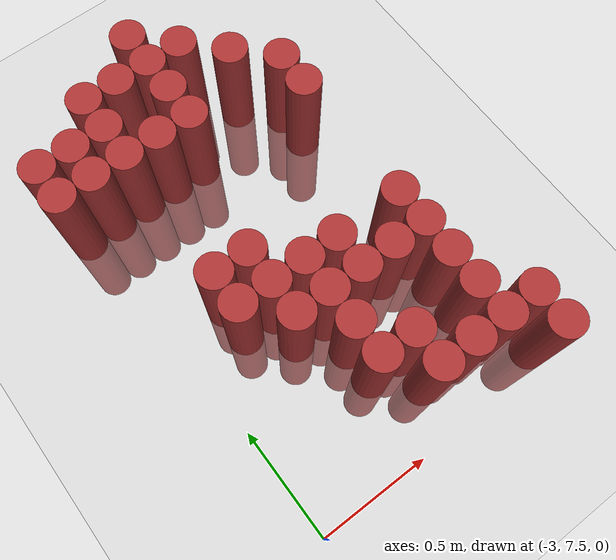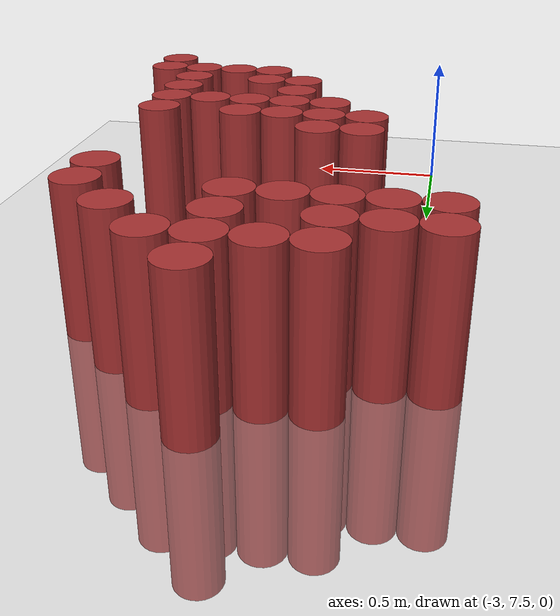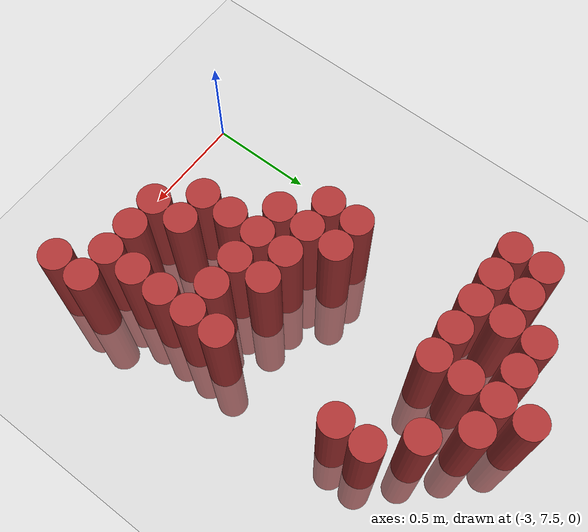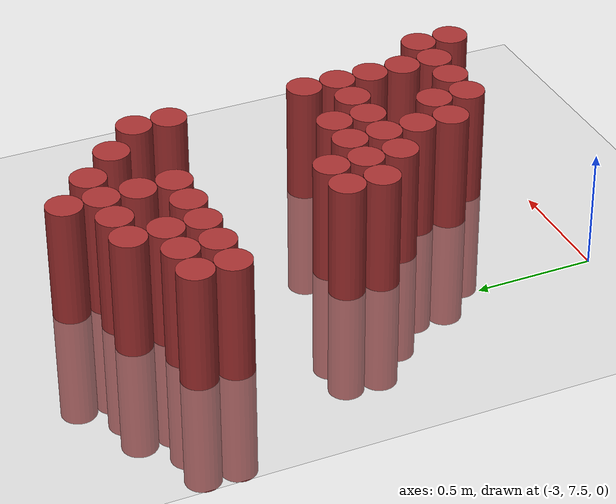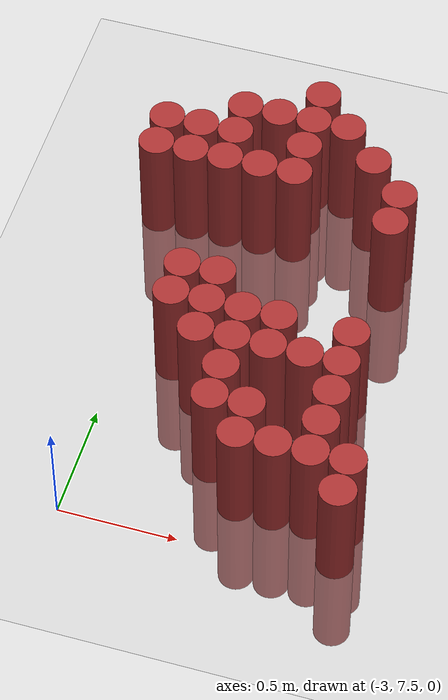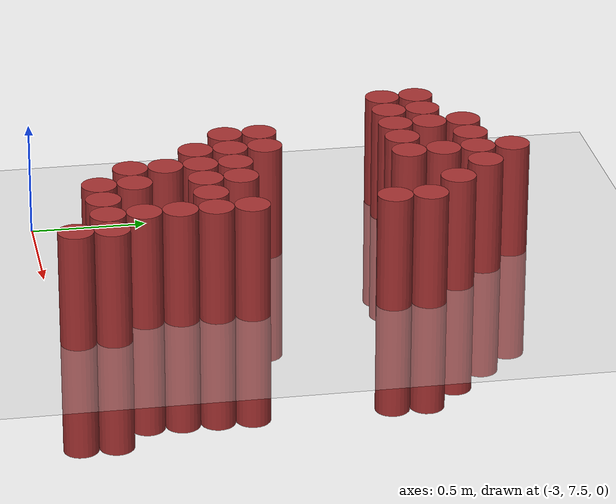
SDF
<sdf version="1.6">
 <world name="default">
  <model name="ground_plane">
   <static>1</static>
   <link name="link">
    <collision name="collision">
     <geometry><plane><normal>0 0 1</normal><size>100 100</size></plane></geometry>
     <surface><friction><ode><mu>100</mu><mu2>50</mu2></ode></friction></surface>
    </collision>
    <visual name="visual">
     <cast_shadows>0</cast_shadows>
     <geometry><plane><normal>0 0 1</normal><size>100 100</size></plane></geometry>
     <material>
      <script><uri>file://media/materials/scripts/gazebo.material</uri><name>Gazebo/Grey</name></script>
     </material>
    </visual>
   </link>
  </model>
  <model name="unit_cylinder_212">
   <static>1</static>
   <pose>-3.075000 9.075000 0.000000 0.000000 0.000000 0.000000</pose>
   <link name="link">
    <inertial>
     <mass>1</mass>
     <inertia><ixx>0.145833</ixx><ixy>0</ixy><ixz>0</ixz><iyy>0.145833</iyy><iyz>0</iyz><izz>0.125</izz></inertia>
    </inertial>
    <collision name="collision">
     <geometry><cylinder><radius>0.075000</radius><length>1</length></cylinder></geometry>
    </collision>
    <visual name="visual">
     <geometry><cylinder><radius>0.075000</radius><length>1</length></cylinder></geometry>
     <material>
      <ambient>0.648000 0.192000 0.192000 1</ambient>
      <diffuse>0.648000 0.192000 0.192000 1</diffuse>
     </material>
     <material>
      <script><name>Gazebo/Grey</name><uri>file://media/materials/scripts/gazebo.material</uri></script>
     </material>
    </visual>
    <sensor name="sensor_contact" type="contact"><contact><collision>collision</collision></contact></sensor>
   </link>
   <plugin filename="gz-sim-touchplugin-system" name="gz::sim::systems::TouchPlugin">
    <target>robot</target>
    <namespace>robot</namespace>
    <time>0.001</time>
    <enabled>true</enabled>
   </plugin>
  </model>
  <model name="unit_cylinder_213">
   <static>1</static>
   <pose>-3.075000 9.225000 0.000000 0.000000 0.000000 0.000000</pose>
   <link name="link">
    <inertial>
     <mass>1</mass>
     <inertia><ixx>0.145833</ixx><ixy>0</ixy><ixz>0</ixz><iyy>0.145833</iyy><iyz>0</iyz><izz>0.125</izz></inertia>
    </inertial>
    <collision name="collision">
     <geometry><cylinder><radius>0.075000</radius><length>1</length></cylinder></geometry>
    </collision>
    <visual name="visual">
     <geometry><cylinder><radius>0.075000</radius><length>1</length></cylinder></geometry>
     <material>
      <ambient>0.648000 0.192000 0.192000 1</ambient>
      <diffuse>0.648000 0.192000 0.192000 1</diffuse>
     </material>
     <material>
      <script><name>Gazebo/Grey</name><uri>file://media/materials/scripts/gazebo.material</uri></script>
     </material>
    </visual>
    <sensor name="sensor_contact" type="contact"><contact><collision>collision</collision></contact></sensor>
   </link>
   <plugin filename="gz-sim-touchplugin-system" name="gz::sim::systems::TouchPlugin">
    <target>robot</target>
    <namespace>robot</namespace>
    <time>0.001</time>
    <enabled>true</enabled>
   </plugin>
  </model>
  <model name="unit_cylinder_216">
   <static>1</static>
   <pose>-2.925000 9.075000 0.000000 0.000000 0.000000 0.000000</pose>
   <link name="link">
    <inertial>
     <mass>1</mass>
     <inertia><ixx>0.145833</ixx><ixy>0</ixy><ixz>0</ixz><iyy>0.145833</iyy><iyz>0</iyz><izz>0.125</izz></inertia>
    </inertial>
    <collision name="collision">
     <geometry><cylinder><radius>0.075000</radius><length>1</length></cylinder></geometry>
    </collision>
    <visual name="visual">
     <geometry><cylinder><radius>0.075000</radius><length>1</length></cylinder></geometry>
     <material>
      <ambient>0.648000 0.192000 0.192000 1</ambient>
      <diffuse>0.648000 0.192000 0.192000 1</diffuse>
     </material>
     <material>
      <script><name>Gazebo/Grey</name><uri>file://media/materials/scripts/gazebo.material</uri></script>
     </material>
    </visual>
    <sensor name="sensor_contact" type="contact"><contact><collision>collision</collision></contact></sensor>
   </link>
   <plugin filename="gz-sim-touchplugin-system" name="gz::sim::systems::TouchPlugin">
    <target>robot</target>
    <namespace>robot</namespace>
    <time>0.001</time>
    <enabled>true</enabled>
   </plugin>
  </model>
  <model name="unit_cylinder_217">
   <static>1</static>
   <pose>-2.925000 9.225000 0.000000 0.000000 0.000000 0.000000</pose>
   <link name="link">
    <inertial>
     <mass>1</mass>
     <inertia><ixx>0.145833</ixx><ixy>0</ixy><ixz>0</ixz><iyy>0.145833</iyy><iyz>0</iyz><izz>0.125</izz></inertia>
    </inertial>
    <collision name="collision">
     <geometry><cylinder><radius>0.075000</radius><length>1</length></cylinder></geometry>
    </collision>
    <visual name="visual">
     <geometry><cylinder><radius>0.075000</radius><length>1</length></cylinder></geometry>
     <material>
      <ambient>0.648000 0.192000 0.192000 1</ambient>
      <diffuse>0.648000 0.192000 0.192000 1</diffuse>
     </material>
     <material>
      <script><name>Gazebo/Grey</name><uri>file://media/materials/scripts/gazebo.material</uri></script>
     </material>
    </visual>
    <sensor name="sensor_contact" type="contact"><contact><collision>collision</collision></contact></sensor>
   </link>
   <plugin filename="gz-sim-touchplugin-system" name="gz::sim::systems::TouchPlugin">
    <target>robot</target>
    <namespace>robot</namespace>
    <time>0.001</time>
    <enabled>true</enabled>
   </plugin>
  </model>
  <model name="unit_cylinder_220">
   <static>1</static>
   <pose>-2.775000 8.325000 0.000000 0.000000 0.000000 0.000000</pose>
   <link name="link">
    <inertial>
     <mass>1</mass>
     <inertia><ixx>0.145833</ixx><ixy>0</ixy><ixz>0</ixz><iyy>0.145833</iyy><iyz>0</iyz><izz>0.125</izz></inertia>
    </inertial>
    <collision name="collision">
     <geometry><cylinder><radius>0.075000</radius><length>1</length></cylinder></geometry>
    </collision>
    <visual name="visual">
     <geometry><cylinder><radius>0.075000</radius><length>1</length></cylinder></geometry>
     <material>
      <ambient>0.648000 0.192000 0.192000 1</ambient>
      <diffuse>0.648000 0.192000 0.192000 1</diffuse>
     </material>
     <material>
      <script><name>Gazebo/Grey</name><uri>file://media/materials/scripts/gazebo.material</uri></script>
     </material>
    </visual>
    <sensor name="sensor_contact" type="contact"><contact><collision>collision</collision></contact></sensor>
   </link>
   <plugin filename="gz-sim-touchplugin-system" name="gz::sim::systems::TouchPlugin">
    <target>robot</target>
    <namespace>robot</namespace>
    <time>0.001</time>
    <enabled>true</enabled>
   </plugin>
  </model>
  <model name="unit_cylinder_221">
   <static>1</static>
   <pose>-2.775000 8.475000 0.000000 0.000000 0.000000 0.000000</pose>
   <link name="link">
    <inertial>
     <mass>1</mass>
     <inertia><ixx>0.145833</ixx><ixy>0</ixy><ixz>0</ixz><iyy>0.145833</iyy><iyz>0</iyz><izz>0.125</izz></inertia>
    </inertial>
    <collision name="collision">
     <geometry><cylinder><radius>0.075000</radius><length>1</length></cylinder></geometry>
    </collision>
    <visual name="visual">
     <geometry><cylinder><radius>0.075000</radius><length>1</length></cylinder></geometry>
     <material>
      <ambient>0.648000 0.192000 0.192000 1</ambient>
      <diffuse>0.648000 0.192000 0.192000 1</diffuse>
     </material>
     <material>
      <script><name>Gazebo/Grey</name><uri>file://media/materials/scripts/gazebo.material</uri></script>
     </material>
    </visual>
    <sensor name="sensor_contact" type="contact"><contact><collision>collision</collision></contact></sensor>
   </link>
   <plugin filename="gz-sim-touchplugin-system" name="gz::sim::systems::TouchPlugin">
    <target>robot</target>
    <namespace>robot</namespace>
    <time>0.001</time>
    <enabled>true</enabled>
   </plugin>
  </model>
  <model name="unit_cylinder_222">
   <static>1</static>
   <pose>-2.775000 9.075000 0.000000 0.000000 0.000000 0.000000</pose>
   <link name="link">
    <inertial>
     <mass>1</mass>
     <inertia><ixx>0.145833</ixx><ixy>0</ixy><ixz>0</ixz><iyy>0.145833</iyy><iyz>0</iyz><izz>0.125</izz></inertia>
    </inertial>
    <collision name="collision">
     <geometry><cylinder><radius>0.075000</radius><length>1</length></cylinder></geometry>
    </collision>
    <visual name="visual">
     <geometry><cylinder><radius>0.075000</radius><length>1</length></cylinder></geometry>
     <material>
      <ambient>0.648000 0.192000 0.192000 1</ambient>
      <diffuse>0.648000 0.192000 0.192000 1</diffuse>
     </material>
     <material>
      <script><name>Gazebo/Grey</name><uri>file://media/materials/scripts/gazebo.material</uri></script>
     </material>
    </visual>
    <sensor name="sensor_contact" type="contact"><contact><collision>collision</collision></contact></sensor>
   </link>
   <plugin filename="gz-sim-touchplugin-system" name="gz::sim::systems::TouchPlugin">
    <target>robot</target>
    <namespace>robot</namespace>
    <time>0.001</time>
    <enabled>true</enabled>
   </plugin>
  </model>
  <model name="unit_cylinder_223">
   <static>1</static>
   <pose>-2.775000 9.225000 0.000000 0.000000 0.000000 0.000000</pose>
   <link name="link">
    <inertial>
     <mass>1</mass>
     <inertia><ixx>0.145833</ixx><ixy>0</ixy><ixz>0</ixz><iyy>0.145833</iyy><iyz>0</iyz><izz>0.125</izz></inertia>
    </inertial>
    <collision name="collision">
     <geometry><cylinder><radius>0.075000</radius><length>1</length></cylinder></geometry>
    </collision>
    <visual name="visual">
     <geometry><cylinder><radius>0.075000</radius><length>1</length></cylinder></geometry>
     <material>
      <ambient>0.648000 0.192000 0.192000 1</ambient>
      <diffuse>0.648000 0.192000 0.192000 1</diffuse>
     </material>
     <material>
      <script><name>Gazebo/Grey</name><uri>file://media/materials/scripts/gazebo.material</uri></script>
     </material>
    </visual>
    <sensor name="sensor_contact" type="contact"><contact><collision>collision</collision></contact></sensor>
   </link>
   <plugin filename="gz-sim-touchplugin-system" name="gz::sim::systems::TouchPlugin">
    <target>robot</target>
    <namespace>robot</namespace>
    <time>0.001</time>
    <enabled>true</enabled>
   </plugin>
  </model>
  <model name="unit_cylinder_224">
   <static>1</static>
   <pose>-2.775000 9.375000 0.000000 0.000000 0.000000 0.000000</pose>
   <link name="link">
    <inertial>
     <mass>1</mass>
     <inertia><ixx>0.145833</ixx><ixy>0</ixy><ixz>0</ixz><iyy>0.145833</iyy><iyz>0</iyz><izz>0.125</izz></inertia>
    </inertial>
    <collision name="collision">
     <geometry><cylinder><radius>0.075000</radius><length>1</length></cylinder></geometry>
    </collision>
    <visual name="visual">
     <geometry><cylinder><radius>0.075000</radius><length>1</length></cylinder></geometry>
     <material>
      <ambient>0.648000 0.192000 0.192000 1</ambient>
      <diffuse>0.648000 0.192000 0.192000 1</diffuse>
     </material>
     <material>
      <script><name>Gazebo/Grey</name><uri>file://media/materials/scripts/gazebo.material</uri></script>
     </material>
    </visual>
    <sensor name="sensor_contact" type="contact"><contact><collision>collision</collision></contact></sensor>
   </link>
   <plugin filename="gz-sim-touchplugin-system" name="gz::sim::systems::TouchPlugin">
    <target>robot</target>
    <namespace>robot</namespace>
    <time>0.001</time>
    <enabled>true</enabled>
   </plugin>
  </model>
  <model name="unit_cylinder_230">
   <static>1</static>
   <pose>-2.625000 8.175000 0.000000 0.000000 0.000000 0.000000</pose>
   <link name="link">
    <inertial>
     <mass>1</mass>
     <inertia><ixx>0.145833</ixx><ixy>0</ixy><ixz>0</ixz><iyy>0.145833</iyy><iyz>0</iyz><izz>0.125</izz></inertia>
    </inertial>
    <collision name="collision">
     <geometry><cylinder><radius>0.075000</radius><length>1</length></cylinder></geometry>
    </collision>
    <visual name="visual">
     <geometry><cylinder><radius>0.075000</radius><length>1</length></cylinder></geometry>
     <material>
      <ambient>0.648000 0.192000 0.192000 1</ambient>
      <diffuse>0.648000 0.192000 0.192000 1</diffuse>
     </material>
     <material>
      <script><name>Gazebo/Grey</name><uri>file://media/materials/scripts/gazebo.material</uri></script>
     </material>
    </visual>
    <sensor name="sensor_contact" type="contact"><contact><collision>collision</collision></contact></sensor>
   </link>
   <plugin filename="gz-sim-touchplugin-system" name="gz::sim::systems::TouchPlugin">
    <target>robot</target>
    <namespace>robot</namespace>
    <time>0.001</time>
    <enabled>true</enabled>
   </plugin>
  </model>
  <model name="unit_cylinder_231">
   <static>1</static>
   <pose>-2.625000 8.325000 0.000000 0.000000 0.000000 0.000000</pose>
   <link name="link">
    <inertial>
     <mass>1</mass>
     <inertia><ixx>0.145833</ixx><ixy>0</ixy><ixz>0</ixz><iyy>0.145833</iyy><iyz>0</iyz><izz>0.125</izz></inertia>
    </inertial>
    <collision name="collision">
     <geometry><cylinder><radius>0.075000</radius><length>1</length></cylinder></geometry>
    </collision>
    <visual name="visual">
     <geometry><cylinder><radius>0.075000</radius><length>1</length></cylinder></geometry>
     <material>
      <ambient>0.648000 0.192000 0.192000 1</ambient>
      <diffuse>0.648000 0.192000 0.192000 1</diffuse>
     </material>
     <material>
      <script><name>Gazebo/Grey</name><uri>file://media/materials/scripts/gazebo.material</uri></script>
     </material>
    </visual>
    <sensor name="sensor_contact" type="contact"><contact><collision>collision</collision></contact></sensor>
   </link>
   <plugin filename="gz-sim-touchplugin-system" name="gz::sim::systems::TouchPlugin">
    <target>robot</target>
    <namespace>robot</namespace>
    <time>0.001</time>
    <enabled>true</enabled>
   </plugin>
  </model>
  <model name="unit_cylinder_232">
   <static>1</static>
   <pose>-2.625000 8.475000 0.000000 0.000000 0.000000 0.000000</pose>
   <link name="link">
    <inertial>
     <mass>1</mass>
     <inertia><ixx>0.145833</ixx><ixy>0</ixy><ixz>0</ixz><iyy>0.145833</iyy><iyz>0</iyz><izz>0.125</izz></inertia>
    </inertial>
    <collision name="collision">
     <geometry><cylinder><radius>0.075000</radius><length>1</length></cylinder></geometry>
    </collision>
    <visual name="visual">
     <geometry><cylinder><radius>0.075000</radius><length>1</length></cylinder></geometry>
     <material>
      <ambient>0.648000 0.192000 0.192000 1</ambient>
      <diffuse>0.648000 0.192000 0.192000 1</diffuse>
     </material>
     <material>
      <script><name>Gazebo/Grey</name><uri>file://media/materials/scripts/gazebo.material</uri></script>
     </material>
    </visual>
    <sensor name="sensor_contact" type="contact"><contact><collision>collision</collision></contact></sensor>
   </link>
   <plugin filename="gz-sim-touchplugin-system" name="gz::sim::systems::TouchPlugin">
    <target>robot</target>
    <namespace>robot</namespace>
    <time>0.001</time>
    <enabled>true</enabled>
   </plugin>
  </model>
  <model name="unit_cylinder_233">
   <static>1</static>
   <pose>-2.625000 9.075000 0.000000 0.000000 0.000000 0.000000</pose>
   <link name="link">
    <inertial>
     <mass>1</mass>
     <inertia><ixx>0.145833</ixx><ixy>0</ixy><ixz>0</ixz><iyy>0.145833</iyy><iyz>0</iyz><izz>0.125</izz></inertia>
    </inertial>
    <collision name="collision">
     <geometry><cylinder><radius>0.075000</radius><length>1</length></cylinder></geometry>
    </collision>
    <visual name="visual">
     <geometry><cylinder><radius>0.075000</radius><length>1</length></cylinder></geometry>
     <material>
      <ambient>0.648000 0.192000 0.192000 1</ambient>
      <diffuse>0.648000 0.192000 0.192000 1</diffuse>
     </material>
     <material>
      <script><name>Gazebo/Grey</name><uri>file://media/materials/scripts/gazebo.material</uri></script>
     </material>
    </visual>
    <sensor name="sensor_contact" type="contact"><contact><collision>collision</collision></contact></sensor>
   </link>
   <plugin filename="gz-sim-touchplugin-system" name="gz::sim::systems::TouchPlugin">
    <target>robot</target>
    <namespace>robot</namespace>
    <time>0.001</time>
    <enabled>true</enabled>
   </plugin>
  </model>
  <model name="unit_cylinder_234">
   <static>1</static>
   <pose>-2.625000 9.375000 0.000000 0.000000 0.000000 0.000000</pose>
   <link name="link">
    <inertial>
     <mass>1</mass>
     <inertia><ixx>0.145833</ixx><ixy>0</ixy><ixz>0</ixz><iyy>0.145833</iyy><iyz>0</iyz><izz>0.125</izz></inertia>
    </inertial>
    <collision name="collision">
     <geometry><cylinder><radius>0.075000</radius><length>1</length></cylinder></geometry>
    </collision>
    <visual name="visual">
     <geometry><cylinder><radius>0.075000</radius><length>1</length></cylinder></geometry>
     <material>
      <ambient>0.648000 0.192000 0.192000 1</ambient>
      <diffuse>0.648000 0.192000 0.192000 1</diffuse>
     </material>
     <material>
      <script><name>Gazebo/Grey</name><uri>file://media/materials/scripts/gazebo.material</uri></script>
     </material>
    </visual>
    <sensor name="sensor_contact" type="contact"><contact><collision>collision</collision></contact></sensor>
   </link>
   <plugin filename="gz-sim-touchplugin-system" name="gz::sim::systems::TouchPlugin">
    <target>robot</target>
    <namespace>robot</namespace>
    <time>0.001</time>
    <enabled>true</enabled>
   </plugin>
  </model>
  <model name="unit_cylinder_239">
   <static>1</static>
   <pose>-2.475000 7.875000 0.000000 0.000000 0.000000 0.000000</pose>
   <link name="link">
    <inertial>
     <mass>1</mass>
     <inertia><ixx>0.145833</ixx><ixy>0</ixy><ixz>0</ixz><iyy>0.145833</iyy><iyz>0</iyz><izz>0.125</izz></inertia>
    </inertial>
    <collision name="collision">
     <geometry><cylinder><radius>0.075000</radius><length>1</length></cylinder></geometry>
    </collision>
    <visual name="visual">
     <geometry><cylinder><radius>0.075000</radius><length>1</length></cylinder></geometry>
     <material>
      <ambient>0.648000 0.192000 0.192000 1</ambient>
      <diffuse>0.648000 0.192000 0.192000 1</diffuse>
     </material>
     <material>
      <script><name>Gazebo/Grey</name><uri>file://media/materials/scripts/gazebo.material</uri></script>
     </material>
    </visual>
    <sensor name="sensor_contact" type="contact"><contact><collision>collision</collision></contact></sensor>
   </link>
   <plugin filename="gz-sim-touchplugin-system" name="gz::sim::systems::TouchPlugin">
    <target>robot</target>
    <namespace>robot</namespace>
    <time>0.001</time>
    <enabled>true</enabled>
   </plugin>
  </model>
  <model name="unit_cylinder_240">
   <static>1</static>
   <pose>-2.475000 8.025000 0.000000 0.000000 0.000000 0.000000</pose>
   <link name="link">
    <inertial>
     <mass>1</mass>
     <inertia><ixx>0.145833</ixx><ixy>0</ixy><ixz>0</ixz><iyy>0.145833</iyy><iyz>0</iyz><izz>0.125</izz></inertia>
    </inertial>
    <collision name="collision">
     <geometry><cylinder><radius>0.075000</radius><length>1</length></cylinder></geometry>
    </collision>
    <visual name="visual">
     <geometry><cylinder><radius>0.075000</radius><length>1</length></cylinder></geometry>
     <material>
      <ambient>0.648000 0.192000 0.192000 1</ambient>
      <diffuse>0.648000 0.192000 0.192000 1</diffuse>
     </material>
     <material>
      <script><name>Gazebo/Grey</name><uri>file://media/materials/scripts/gazebo.material</uri></script>
     </material>
    </visual>
    <sensor name="sensor_contact" type="contact"><contact><collision>collision</collision></contact></sensor>
   </link>
   <plugin filename="gz-sim-touchplugin-system" name="gz::sim::systems::TouchPlugin">
    <target>robot</target>
    <namespace>robot</namespace>
    <time>0.001</time>
    <enabled>true</enabled>
   </plugin>
  </model>
  <model name="unit_cylinder_241">
   <static>1</static>
   <pose>-2.475000 8.175000 0.000000 0.000000 0.000000 0.000000</pose>
   <link name="link">
    <inertial>
     <mass>1</mass>
     <inertia><ixx>0.145833</ixx><ixy>0</ixy><ixz>0</ixz><iyy>0.145833</iyy><iyz>0</iyz><izz>0.125</izz></inertia>
    </inertial>
    <collision name="collision">
     <geometry><cylinder><radius>0.075000</radius><length>1</length></cylinder></geometry>
    </collision>
    <visual name="visual">
     <geometry><cylinder><radius>0.075000</radius><length>1</length></cylinder></geometry>
     <material>
      <ambient>0.648000 0.192000 0.192000 1</ambient>
      <diffuse>0.648000 0.192000 0.192000 1</diffuse>
     </material>
     <material>
      <script><name>Gazebo/Grey</name><uri>file://media/materials/scripts/gazebo.material</uri></script>
     </material>
    </visual>
    <sensor name="sensor_contact" type="contact"><contact><collision>collision</collision></contact></sensor>
   </link>
   <plugin filename="gz-sim-touchplugin-system" name="gz::sim::systems::TouchPlugin">
    <target>robot</target>
    <namespace>robot</namespace>
    <time>0.001</time>
    <enabled>true</enabled>
   </plugin>
  </model>
  <model name="unit_cylinder_242">
   <static>1</static>
   <pose>-2.475000 8.325000 0.000000 0.000000 0.000000 0.000000</pose>
   <link name="link">
    <inertial>
     <mass>1</mass>
     <inertia><ixx>0.145833</ixx><ixy>0</ixy><ixz>0</ixz><iyy>0.145833</iyy><iyz>0</iyz><izz>0.125</izz></inertia>
    </inertial>
    <collision name="collision">
     <geometry><cylinder><radius>0.075000</radius><length>1</length></cylinder></geometry>
    </collision>
    <visual name="visual">
     <geometry><cylinder><radius>0.075000</radius><length>1</length></cylinder></geometry>
     <material>
      <ambient>0.648000 0.192000 0.192000 1</ambient>
      <diffuse>0.648000 0.192000 0.192000 1</diffuse>
     </material>
     <material>
      <script><name>Gazebo/Grey</name><uri>file://media/materials/scripts/gazebo.material</uri></script>
     </material>
    </visual>
    <sensor name="sensor_contact" type="contact"><contact><collision>collision</collision></contact></sensor>
   </link>
   <plugin filename="gz-sim-touchplugin-system" name="gz::sim::systems::TouchPlugin">
    <target>robot</target>
    <namespace>robot</namespace>
    <time>0.001</time>
    <enabled>true</enabled>
   </plugin>
  </model>
  <model name="unit_cylinder_243">
   <static>1</static>
   <pose>-2.475000 9.075000 0.000000 0.000000 0.000000 0.000000</pose>
   <link name="link">
    <inertial>
     <mass>1</mass>
     <inertia><ixx>0.145833</ixx><ixy>0</ixy><ixz>0</ixz><iyy>0.145833</iyy><iyz>0</iyz><izz>0.125</izz></inertia>
    </inertial>
    <collision name="collision">
     <geometry><cylinder><radius>0.075000</radius><length>1</length></cylinder></geometry>
    </collision>
    <visual name="visual">
     <geometry><cylinder><radius>0.075000</radius><length>1</length></cylinder></geometry>
     <material>
      <ambient>0.648000 0.192000 0.192000 1</ambient>
      <diffuse>0.648000 0.192000 0.192000 1</diffuse>
     </material>
     <material>
      <script><name>Gazebo/Grey</name><uri>file://media/materials/scripts/gazebo.material</uri></script>
     </material>
    </visual>
    <sensor name="sensor_contact" type="contact"><contact><collision>collision</collision></contact></sensor>
   </link>
   <plugin filename="gz-sim-touchplugin-system" name="gz::sim::systems::TouchPlugin">
    <target>robot</target>
    <namespace>robot</namespace>
    <time>0.001</time>
    <enabled>true</enabled>
   </plugin>
  </model>
  <model name="unit_cylinder_244">
   <static>1</static>
   <pose>-2.475000 9.225000 0.000000 0.000000 0.000000 0.000000</pose>
   <link name="link">
    <inertial>
     <mass>1</mass>
     <inertia><ixx>0.145833</ixx><ixy>0</ixy><ixz>0</ixz><iyy>0.145833</iyy><iyz>0</iyz><izz>0.125</izz></inertia>
    </inertial>
    <collision name="collision">
     <geometry><cylinder><radius>0.075000</radius><length>1</length></cylinder></geometry>
    </collision>
    <visual name="visual">
     <geometry><cylinder><radius>0.075000</radius><length>1</length></cylinder></geometry>
     <material>
      <ambient>0.648000 0.192000 0.192000 1</ambient>
      <diffuse>0.648000 0.192000 0.192000 1</diffuse>
     </material>
     <material>
      <script><name>Gazebo/Grey</name><uri>file://media/materials/scripts/gazebo.material</uri></script>
     </material>
    </visual>
    <sensor name="sensor_contact" type="contact"><contact><collision>collision</collision></contact></sensor>
   </link>
   <plugin filename="gz-sim-touchplugin-system" name="gz::sim::systems::TouchPlugin">
    <target>robot</target>
    <namespace>robot</namespace>
    <time>0.001</time>
    <enabled>true</enabled>
   </plugin>
  </model>
  <model name="unit_cylinder_245">
   <static>1</static>
   <pose>-2.475000 9.375000 0.000000 0.000000 0.000000 0.000000</pose>
   <link name="link">
    <inertial>
     <mass>1</mass>
     <inertia><ixx>0.145833</ixx><ixy>0</ixy><ixz>0</ixz><iyy>0.145833</iyy><iyz>0</iyz><izz>0.125</izz></inertia>
    </inertial>
    <collision name="collision">
     <geometry><cylinder><radius>0.075000</radius><length>1</length></cylinder></geometry>
    </collision>
    <visual name="visual">
     <geometry><cylinder><radius>0.075000</radius><length>1</length></cylinder></geometry>
     <material>
      <ambient>0.648000 0.192000 0.192000 1</ambient>
      <diffuse>0.648000 0.192000 0.192000 1</diffuse>
     </material>
     <material>
      <script><name>Gazebo/Grey</name><uri>file://media/materials/scripts/gazebo.material</uri></script>
     </material>
    </visual>
    <sensor name="sensor_contact" type="contact"><contact><collision>collision</collision></contact></sensor>
   </link>
   <plugin filename="gz-sim-touchplugin-system" name="gz::sim::systems::TouchPlugin">
    <target>robot</target>
    <namespace>robot</namespace>
    <time>0.001</time>
    <enabled>true</enabled>
   </plugin>
  </model>
  <model name="unit_cylinder_246">
   <static>1</static>
   <pose>-2.475000 9.525000 0.000000 0.000000 0.000000 0.000000</pose>
   <link name="link">
    <inertial>
     <mass>1</mass>
     <inertia><ixx>0.145833</ixx><ixy>0</ixy><ixz>0</ixz><iyy>0.145833</iyy><iyz>0</iyz><izz>0.125</izz></inertia>
    </inertial>
    <collision name="collision">
     <geometry><cylinder><radius>0.075000</radius><length>1</length></cylinder></geometry>
    </collision>
    <visual name="visual">
     <geometry><cylinder><radius>0.075000</radius><length>1</length></cylinder></geometry>
     <material>
      <ambient>0.648000 0.192000 0.192000 1</ambient>
      <diffuse>0.648000 0.192000 0.192000 1</diffuse>
     </material>
     <material>
      <script><name>Gazebo/Grey</name><uri>file://media/materials/scripts/gazebo.material</uri></script>
     </material>
    </visual>
    <sensor name="sensor_contact" type="contact"><contact><collision>collision</collision></contact></sensor>
   </link>
   <plugin filename="gz-sim-touchplugin-system" name="gz::sim::systems::TouchPlugin">
    <target>robot</target>
    <namespace>robot</namespace>
    <time>0.001</time>
    <enabled>true</enabled>
   </plugin>
  </model>
  <model name="unit_cylinder_251">
   <static>1</static>
   <pose>-2.325000 7.725000 0.000000 0.000000 0.000000 0.000000</pose>
   <link name="link">
    <inertial>
     <mass>1</mass>
     <inertia><ixx>0.145833</ixx><ixy>0</ixy><ixz>0</ixz><iyy>0.145833</iyy><iyz>0</iyz><izz>0.125</izz></inertia>
    </inertial>
    <collision name="collision">
     <geometry><cylinder><radius>0.075000</radius><length>1</length></cylinder></geometry>
    </collision>
    <visual name="visual">
     <geometry><cylinder><radius>0.075000</radius><length>1</length></cylinder></geometry>
     <material>
      <ambient>0.648000 0.192000 0.192000 1</ambient>
      <diffuse>0.648000 0.192000 0.192000 1</diffuse>
     </material>
     <material>
      <script><name>Gazebo/Grey</name><uri>file://media/materials/scripts/gazebo.material</uri></script>
     </material>
    </visual>
    <sensor name="sensor_contact" type="contact"><contact><collision>collision</collision></contact></sensor>
   </link>
   <plugin filename="gz-sim-touchplugin-system" name="gz::sim::systems::TouchPlugin">
    <target>robot</target>
    <namespace>robot</namespace>
    <time>0.001</time>
    <enabled>true</enabled>
   </plugin>
  </model>
  <model name="unit_cylinder_252">
   <static>1</static>
   <pose>-2.325000 7.875000 0.000000 0.000000 0.000000 0.000000</pose>
   <link name="link">
    <inertial>
     <mass>1</mass>
     <inertia><ixx>0.145833</ixx><ixy>0</ixy><ixz>0</ixz><iyy>0.145833</iyy><iyz>0</iyz><izz>0.125</izz></inertia>
    </inertial>
    <collision name="collision">
     <geometry><cylinder><radius>0.075000</radius><length>1</length></cylinder></geometry>
    </collision>
    <visual name="visual">
     <geometry><cylinder><radius>0.075000</radius><length>1</length></cylinder></geometry>
     <material>
      <ambient>0.648000 0.192000 0.192000 1</ambient>
      <diffuse>0.648000 0.192000 0.192000 1</diffuse>
     </material>
     <material>
      <script><name>Gazebo/Grey</name><uri>file://media/materials/scripts/gazebo.material</uri></script>
     </material>
    </visual>
    <sensor name="sensor_contact" type="contact"><contact><collision>collision</collision></contact></sensor>
   </link>
   <plugin filename="gz-sim-touchplugin-system" name="gz::sim::systems::TouchPlugin">
    <target>robot</target>
    <namespace>robot</namespace>
    <time>0.001</time>
    <enabled>true</enabled>
   </plugin>
  </model>
  <model name="unit_cylinder_253">
   <static>1</static>
   <pose>-2.325000 8.175000 0.000000 0.000000 0.000000 0.000000</pose>
   <link name="link">
    <inertial>
     <mass>1</mass>
     <inertia><ixx>0.145833</ixx><ixy>0</ixy><ixz>0</ixz><iyy>0.145833</iyy><iyz>0</iyz><izz>0.125</izz></inertia>
    </inertial>
    <collision name="collision">
     <geometry><cylinder><radius>0.075000</radius><length>1</length></cylinder></geometry>
    </collision>
    <visual name="visual">
     <geometry><cylinder><radius>0.075000</radius><length>1</length></cylinder></geometry>
     <material>
      <ambient>0.648000 0.192000 0.192000 1</ambient>
      <diffuse>0.648000 0.192000 0.192000 1</diffuse>
     </material>
     <material>
      <script><name>Gazebo/Grey</name><uri>file://media/materials/scripts/gazebo.material</uri></script>
     </material>
    </visual>
    <sensor name="sensor_contact" type="contact"><contact><collision>collision</collision></contact></sensor>
   </link>
   <plugin filename="gz-sim-touchplugin-system" name="gz::sim::systems::TouchPlugin">
    <target>robot</target>
    <namespace>robot</namespace>
    <time>0.001</time>
    <enabled>true</enabled>
   </plugin>
  </model>
  <model name="unit_cylinder_254">
   <static>1</static>
   <pose>-2.325000 8.325000 0.000000 0.000000 0.000000 0.000000</pose>
   <link name="link">
    <inertial>
     <mass>1</mass>
     <inertia><ixx>0.145833</ixx><ixy>0</ixy><ixz>0</ixz><iyy>0.145833</iyy><iyz>0</iyz><izz>0.125</izz></inertia>
    </inertial>
    <collision name="collision">
     <geometry><cylinder><radius>0.075000</radius><length>1</length></cylinder></geometry>
    </collision>
    <visual name="visual">
     <geometry><cylinder><radius>0.075000</radius><length>1</length></cylinder></geometry>
     <material>
      <ambient>0.648000 0.192000 0.192000 1</ambient>
      <diffuse>0.648000 0.192000 0.192000 1</diffuse>
     </material>
     <material>
      <script><name>Gazebo/Grey</name><uri>file://media/materials/scripts/gazebo.material</uri></script>
     </material>
    </visual>
    <sensor name="sensor_contact" type="contact"><contact><collision>collision</collision></contact></sensor>
   </link>
   <plugin filename="gz-sim-touchplugin-system" name="gz::sim::systems::TouchPlugin">
    <target>robot</target>
    <namespace>robot</namespace>
    <time>0.001</time>
    <enabled>true</enabled>
   </plugin>
  </model>
  <model name="unit_cylinder_255">
   <static>1</static>
   <pose>-2.325000 9.375000 0.000000 0.000000 0.000000 0.000000</pose>
   <link name="link">
    <inertial>
     <mass>1</mass>
     <inertia><ixx>0.145833</ixx><ixy>0</ixy><ixz>0</ixz><iyy>0.145833</iyy><iyz>0</iyz><izz>0.125</izz></inertia>
    </inertial>
    <collision name="collision">
     <geometry><cylinder><radius>0.075000</radius><length>1</length></cylinder></geometry>
    </collision>
    <visual name="visual">
     <geometry><cylinder><radius>0.075000</radius><length>1</length></cylinder></geometry>
     <material>
      <ambient>0.648000 0.192000 0.192000 1</ambient>
      <diffuse>0.648000 0.192000 0.192000 1</diffuse>
     </material>
     <material>
      <script><name>Gazebo/Grey</name><uri>file://media/materials/scripts/gazebo.material</uri></script>
     </material>
    </visual>
    <sensor name="sensor_contact" type="contact"><contact><collision>collision</collision></contact></sensor>
   </link>
   <plugin filename="gz-sim-touchplugin-system" name="gz::sim::systems::TouchPlugin">
    <target>robot</target>
    <namespace>robot</namespace>
    <time>0.001</time>
    <enabled>true</enabled>
   </plugin>
  </model>
  <model name="unit_cylinder_262">
   <static>1</static>
   <pose>-2.175000 7.725000 0.000000 0.000000 0.000000 0.000000</pose>
   <link name="link">
    <inertial>
     <mass>1</mass>
     <inertia><ixx>0.145833</ixx><ixy>0</ixy><ixz>0</ixz><iyy>0.145833</iyy><iyz>0</iyz><izz>0.125</izz></inertia>
    </inertial>
    <collision name="collision">
     <geometry><cylinder><radius>0.075000</radius><length>1</length></cylinder></geometry>
    </collision>
    <visual name="visual">
     <geometry><cylinder><radius>0.075000</radius><length>1</length></cylinder></geometry>
     <material>
      <ambient>0.648000 0.192000 0.192000 1</ambient>
      <diffuse>0.648000 0.192000 0.192000 1</diffuse>
     </material>
     <material>
      <script><name>Gazebo/Grey</name><uri>file://media/materials/scripts/gazebo.material</uri></script>
     </material>
    </visual>
    <sensor name="sensor_contact" type="contact"><contact><collision>collision</collision></contact></sensor>
   </link>
   <plugin filename="gz-sim-touchplugin-system" name="gz::sim::systems::TouchPlugin">
    <target>robot</target>
    <namespace>robot</namespace>
    <time>0.001</time>
    <enabled>true</enabled>
   </plugin>
  </model>
  <model name="unit_cylinder_263">
   <static>1</static>
   <pose>-2.175000 8.175000 0.000000 0.000000 0.000000 0.000000</pose>
   <link name="link">
    <inertial>
     <mass>1</mass>
     <inertia><ixx>0.145833</ixx><ixy>0</ixy><ixz>0</ixz><iyy>0.145833</iyy><iyz>0</iyz><izz>0.125</izz></inertia>
    </inertial>
    <collision name="collision">
     <geometry><cylinder><radius>0.075000</radius><length>1</length></cylinder></geometry>
    </collision>
    <visual name="visual">
     <geometry><cylinder><radius>0.075000</radius><length>1</length></cylinder></geometry>
     <material>
      <ambient>0.648000 0.192000 0.192000 1</ambient>
      <diffuse>0.648000 0.192000 0.192000 1</diffuse>
     </material>
     <material>
      <script><name>Gazebo/Grey</name><uri>file://media/materials/scripts/gazebo.material</uri></script>
     </material>
    </visual>
    <sensor name="sensor_contact" type="contact"><contact><collision>collision</collision></contact></sensor>
   </link>
   <plugin filename="gz-sim-touchplugin-system" name="gz::sim::systems::TouchPlugin">
    <target>robot</target>
    <namespace>robot</namespace>
    <time>0.001</time>
    <enabled>true</enabled>
   </plugin>
  </model>
  <model name="unit_cylinder_264">
   <static>1</static>
   <pose>-2.175000 9.225000 0.000000 0.000000 0.000000 0.000000</pose>
   <link name="link">
    <inertial>
     <mass>1</mass>
     <inertia><ixx>0.145833</ixx><ixy>0</ixy><ixz>0</ixz><iyy>0.145833</iyy><iyz>0</iyz><izz>0.125</izz></inertia>
    </inertial>
    <collision name="collision">
     <geometry><cylinder><radius>0.075000</radius><length>1</length></cylinder></geometry>
    </collision>
    <visual name="visual">
     <geometry><cylinder><radius>0.075000</radius><length>1</length></cylinder></geometry>
     <material>
      <ambient>0.648000 0.192000 0.192000 1</ambient>
      <diffuse>0.648000 0.192000 0.192000 1</diffuse>
     </material>
     <material>
      <script><name>Gazebo/Grey</name><uri>file://media/materials/scripts/gazebo.material</uri></script>
     </material>
    </visual>
    <sensor name="sensor_contact" type="contact"><contact><collision>collision</collision></contact></sensor>
   </link>
   <plugin filename="gz-sim-touchplugin-system" name="gz::sim::systems::TouchPlugin">
    <target>robot</target>
    <namespace>robot</namespace>
    <time>0.001</time>
    <enabled>true</enabled>
   </plugin>
  </model>
  <model name="unit_cylinder_267">
   <static>1</static>
   <pose>-2.025000 7.725000 0.000000 0.000000 0.000000 0.000000</pose>
   <link name="link">
    <inertial>
     <mass>1</mass>
     <inertia><ixx>0.145833</ixx><ixy>0</ixy><ixz>0</ixz><iyy>0.145833</iyy><iyz>0</iyz><izz>0.125</izz></inertia>
    </inertial>
    <collision name="collision">
     <geometry><cylinder><radius>0.075000</radius><length>1</length></cylinder></geometry>
    </collision>
    <visual name="visual">
     <geometry><cylinder><radius>0.075000</radius><length>1</length></cylinder></geometry>
     <material>
      <ambient>0.648000 0.192000 0.192000 1</ambient>
      <diffuse>0.648000 0.192000 0.192000 1</diffuse>
     </material>
     <material>
      <script><name>Gazebo/Grey</name><uri>file://media/materials/scripts/gazebo.material</uri></script>
     </material>
    </visual>
    <sensor name="sensor_contact" type="contact"><contact><collision>collision</collision></contact></sensor>
   </link>
   <plugin filename="gz-sim-touchplugin-system" name="gz::sim::systems::TouchPlugin">
    <target>robot</target>
    <namespace>robot</namespace>
    <time>0.001</time>
    <enabled>true</enabled>
   </plugin>
  </model>
  <model name="unit_cylinder_268">
   <static>1</static>
   <pose>-2.025000 7.875000 0.000000 0.000000 0.000000 0.000000</pose>
   <link name="link">
    <inertial>
     <mass>1</mass>
     <inertia><ixx>0.145833</ixx><ixy>0</ixy><ixz>0</ixz><iyy>0.145833</iyy><iyz>0</iyz><izz>0.125</izz></inertia>
    </inertial>
    <collision name="collision">
     <geometry><cylinder><radius>0.075000</radius><length>1</length></cylinder></geometry>
    </collision>
    <visual name="visual">
     <geometry><cylinder><radius>0.075000</radius><length>1</length></cylinder></geometry>
     <material>
      <ambient>0.648000 0.192000 0.192000 1</ambient>
      <diffuse>0.648000 0.192000 0.192000 1</diffuse>
     </material>
     <material>
      <script><name>Gazebo/Grey</name><uri>file://media/materials/scripts/gazebo.material</uri></script>
     </material>
    </visual>
    <sensor name="sensor_contact" type="contact"><contact><collision>collision</collision></contact></sensor>
   </link>
   <plugin filename="gz-sim-touchplugin-system" name="gz::sim::systems::TouchPlugin">
    <target>robot</target>
    <namespace>robot</namespace>
    <time>0.001</time>
    <enabled>true</enabled>
   </plugin>
  </model>
  <model name="unit_cylinder_269">
   <static>1</static>
   <pose>-2.025000 8.025000 0.000000 0.000000 0.000000 0.000000</pose>
   <link name="link">
    <inertial>
     <mass>1</mass>
     <inertia><ixx>0.145833</ixx><ixy>0</ixy><ixz>0</ixz><iyy>0.145833</iyy><iyz>0</iyz><izz>0.125</izz></inertia>
    </inertial>
    <collision name="collision">
     <geometry><cylinder><radius>0.075000</radius><length>1</length></cylinder></geometry>
    </collision>
    <visual name="visual">
     <geometry><cylinder><radius>0.075000</radius><length>1</length></cylinder></geometry>
     <material>
      <ambient>0.648000 0.192000 0.192000 1</ambient>
      <diffuse>0.648000 0.192000 0.192000 1</diffuse>
     </material>
     <material>
      <script><name>Gazebo/Grey</name><uri>file://media/materials/scripts/gazebo.material</uri></script>
     </material>
    </visual>
    <sensor name="sensor_contact" type="contact"><contact><collision>collision</collision></contact></sensor>
   </link>
   <plugin filename="gz-sim-touchplugin-system" name="gz::sim::systems::TouchPlugin">
    <target>robot</target>
    <namespace>robot</namespace>
    <time>0.001</time>
    <enabled>true</enabled>
   </plugin>
  </model>
  <model name="unit_cylinder_270">
   <static>1</static>
   <pose>-2.025000 8.175000 0.000000 0.000000 0.000000 0.000000</pose>
   <link name="link">
    <inertial>
     <mass>1</mass>
     <inertia><ixx>0.145833</ixx><ixy>0</ixy><ixz>0</ixz><iyy>0.145833</iyy><iyz>0</iyz><izz>0.125</izz></inertia>
    </inertial>
    <collision name="collision">
     <geometry><cylinder><radius>0.075000</radius><length>1</length></cylinder></geometry>
    </collision>
    <visual name="visual">
     <geometry><cylinder><radius>0.075000</radius><length>1</length></cylinder></geometry>
     <material>
      <ambient>0.648000 0.192000 0.192000 1</ambient>
      <diffuse>0.648000 0.192000 0.192000 1</diffuse>
     </material>
     <material>
      <script><name>Gazebo/Grey</name><uri>file://media/materials/scripts/gazebo.material</uri></script>
     </material>
    </visual>
    <sensor name="sensor_contact" type="contact"><contact><collision>collision</collision></contact></sensor>
   </link>
   <plugin filename="gz-sim-touchplugin-system" name="gz::sim::systems::TouchPlugin">
    <target>robot</target>
    <namespace>robot</namespace>
    <time>0.001</time>
    <enabled>true</enabled>
   </plugin>
  </model>
  <model name="unit_cylinder_271">
   <static>1</static>
   <pose>-2.025000 8.325000 0.000000 0.000000 0.000000 0.000000</pose>
   <link name="link">
    <inertial>
     <mass>1</mass>
     <inertia><ixx>0.145833</ixx><ixy>0</ixy><ixz>0</ixz><iyy>0.145833</iyy><iyz>0</iyz><izz>0.125</izz></inertia>
    </inertial>
    <collision name="collision">
     <geometry><cylinder><radius>0.075000</radius><length>1</length></cylinder></geometry>
    </collision>
    <visual name="visual">
     <geometry><cylinder><radius>0.075000</radius><length>1</length></cylinder></geometry>
     <material>
      <ambient>0.648000 0.192000 0.192000 1</ambient>
      <diffuse>0.648000 0.192000 0.192000 1</diffuse>
     </material>
     <material>
      <script><name>Gazebo/Grey</name><uri>file://media/materials/scripts/gazebo.material</uri></script>
     </material>
    </visual>
    <sensor name="sensor_contact" type="contact"><contact><collision>collision</collision></contact></sensor>
   </link>
   <plugin filename="gz-sim-touchplugin-system" name="gz::sim::systems::TouchPlugin">
    <target>robot</target>
    <namespace>robot</namespace>
    <time>0.001</time>
    <enabled>true</enabled>
   </plugin>
  </model>
  <model name="unit_cylinder_272">
   <static>1</static>
   <pose>-2.025000 8.925000 0.000000 0.000000 0.000000 0.000000</pose>
   <link name="link">
    <inertial>
     <mass>1</mass>
     <inertia><ixx>0.145833</ixx><ixy>0</ixy><ixz>0</ixz><iyy>0.145833</iyy><iyz>0</iyz><izz>0.125</izz></inertia>
    </inertial>
    <collision name="collision">
     <geometry><cylinder><radius>0.075000</radius><length>1</length></cylinder></geometry>
    </collision>
    <visual name="visual">
     <geometry><cylinder><radius>0.075000</radius><length>1</length></cylinder></geometry>
     <material>
      <ambient>0.648000 0.192000 0.192000 1</ambient>
      <diffuse>0.648000 0.192000 0.192000 1</diffuse>
     </material>
     <material>
      <script><name>Gazebo/Grey</name><uri>file://media/materials/scripts/gazebo.material</uri></script>
     </material>
    </visual>
    <sensor name="sensor_contact" type="contact"><contact><collision>collision</collision></contact></sensor>
   </link>
   <plugin filename="gz-sim-touchplugin-system" name="gz::sim::systems::TouchPlugin">
    <target>robot</target>
    <namespace>robot</namespace>
    <time>0.001</time>
    <enabled>true</enabled>
   </plugin>
  </model>
  <model name="unit_cylinder_273">
   <static>1</static>
   <pose>-2.025000 9.075000 0.000000 0.000000 0.000000 0.000000</pose>
   <link name="link">
    <inertial>
     <mass>1</mass>
     <inertia><ixx>0.145833</ixx><ixy>0</ixy><ixz>0</ixz><iyy>0.145833</iyy><iyz>0</iyz><izz>0.125</izz></inertia>
    </inertial>
    <collision name="collision">
     <geometry><cylinder><radius>0.075000</radius><length>1</length></cylinder></geometry>
    </collision>
    <visual name="visual">
     <geometry><cylinder><radius>0.075000</radius><length>1</length></cylinder></geometry>
     <material>
      <ambient>0.648000 0.192000 0.192000 1</ambient>
      <diffuse>0.648000 0.192000 0.192000 1</diffuse>
     </material>
     <material>
      <script><name>Gazebo/Grey</name><uri>file://media/materials/scripts/gazebo.material</uri></script>
     </material>
    </visual>
    <sensor name="sensor_contact" type="contact"><contact><collision>collision</collision></contact></sensor>
   </link>
   <plugin filename="gz-sim-touchplugin-system" name="gz::sim::systems::TouchPlugin">
    <target>robot</target>
    <namespace>robot</namespace>
    <time>0.001</time>
    <enabled>true</enabled>
   </plugin>
  </model>
  <model name="unit_cylinder_278">
   <static>1</static>
   <pose>-1.875000 7.575000 0.000000 0.000000 0.000000 0.000000</pose>
   <link name="link">
    <inertial>
     <mass>1</mass>
     <inertia><ixx>0.145833</ixx><ixy>0</ixy><ixz>0</ixz><iyy>0.145833</iyy><iyz>0</iyz><izz>0.125</izz></inertia>
    </inertial>
    <collision name="collision">
     <geometry><cylinder><radius>0.075000</radius><length>1</length></cylinder></geometry>
    </collision>
    <visual name="visual">
     <geometry><cylinder><radius>0.075000</radius><length>1</length></cylinder></geometry>
     <material>
      <ambient>0.648000 0.192000 0.192000 1</ambient>
      <diffuse>0.648000 0.192000 0.192000 1</diffuse>
     </material>
     <material>
      <script><name>Gazebo/Grey</name><uri>file://media/materials/scripts/gazebo.material</uri></script>
     </material>
    </visual>
    <sensor name="sensor_contact" type="contact"><contact><collision>collision</collision></contact></sensor>
   </link>
   <plugin filename="gz-sim-touchplugin-system" name="gz::sim::systems::TouchPlugin">
    <target>robot</target>
    <namespace>robot</namespace>
    <time>0.001</time>
    <enabled>true</enabled>
   </plugin>
  </model>
  <model name="unit_cylinder_279">
   <static>1</static>
   <pose>-1.875000 7.725000 0.000000 0.000000 0.000000 0.000000</pose>
   <link name="link">
    <inertial>
     <mass>1</mass>
     <inertia><ixx>0.145833</ixx><ixy>0</ixy><ixz>0</ixz><iyy>0.145833</iyy><iyz>0</iyz><izz>0.125</izz></inertia>
    </inertial>
    <collision name="collision">
     <geometry><cylinder><radius>0.075000</radius><length>1</length></cylinder></geometry>
    </collision>
    <visual name="visual">
     <geometry><cylinder><radius>0.075000</radius><length>1</length></cylinder></geometry>
     <material>
      <ambient>0.648000 0.192000 0.192000 1</ambient>
      <diffuse>0.648000 0.192000 0.192000 1</diffuse>
     </material>
     <material>
      <script><name>Gazebo/Grey</name><uri>file://media/materials/scripts/gazebo.material</uri></script>
     </material>
    </visual>
    <sensor name="sensor_contact" type="contact"><contact><collision>collision</collision></contact></sensor>
   </link>
   <plugin filename="gz-sim-touchplugin-system" name="gz::sim::systems::TouchPlugin">
    <target>robot</target>
    <namespace>robot</namespace>
    <time>0.001</time>
    <enabled>true</enabled>
   </plugin>
  </model>
 </world>
</sdf>
